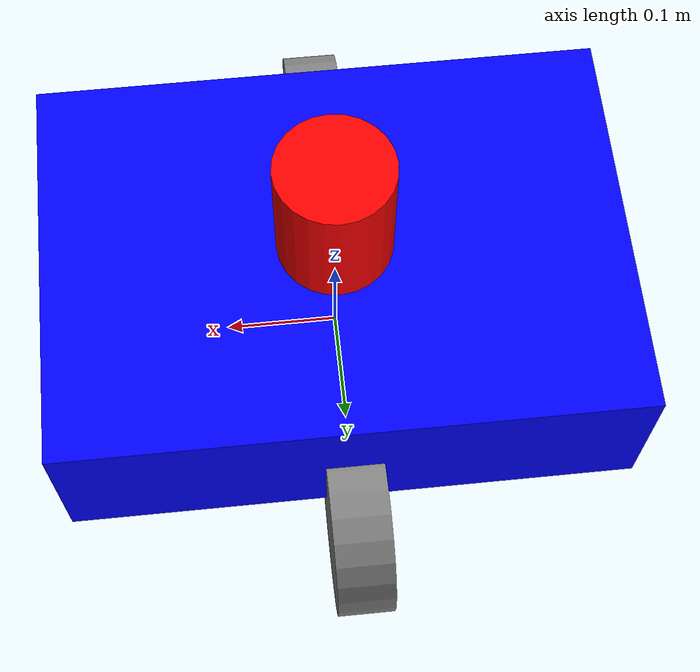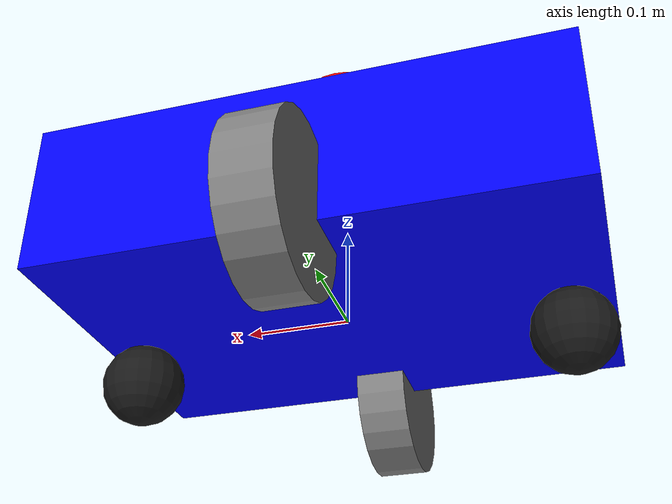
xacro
<?xml version="1.0"?>
<robot name="demo2_robot" xmlns:xacro="http://www.ros.org/wiki/xacro">

  <xacro:property name="base_link_length" value="0.5" />
  <xacro:property name="base_link_width" value="0.35" />
  <xacro:property name="base_link_height" value="0.15" />
  <xacro:property name="base_link_radius" value="0.175" />

  <xacro:property name="wheel_radius" value="0.08" />
  <xacro:property name="wheel_width" value="0.05" />

  <xacro:property name="caster_radius" value="0.04" />

  <xacro:property name="laser_height" value="0.12" />
  <xacro:property name="laser_radius" value="0.05" />

  <link name="base_footprint">
    <visual>
      <geometry>
        <sphere radius="0.001" />
      </geometry>
    </visual>
  </link>

  <joint name="base_footprint2base_link" type="fixed">
    <parent link="base_footprint" />
    <child link="base_link" />
    <origin xyz="0 0 ${base_link_height/2}" />
  </joint>

  <link name="base_link">
    <visual>
      <geometry>
        <box size="${base_link_length} ${base_link_width} ${base_link_height}" />
      </geometry>
      <material name="blue">
        <color rgba="0 0 1.0 1.0" />
      </material>
    </visual>
    <collision>
      <geometry>
        <box size="${base_link_length} ${base_link_width} ${base_link_height}" />
      </geometry>
    </collision>
    <inertial>
      <origin xyz="0 0 0" />
      <mass value="5" />
      <inertia ixx="0.05" ixy="0" ixz="0" iyy="0.08" iyz="0" izz="0.08" />
    </inertial>
  </link>

  <xacro:macro name="wheel" params="prefix joint_name parent_link xyz rpy">
    <link name="${prefix}_wheel">
      <visual>
        <geometry>
          <cylinder radius="${wheel_radius}" length="${wheel_width}" />
        </geometry>
        <material name="gray">
          <color rgba="0.5 0.5 0.5 1.0" />
        </material>
        <origin rpy="0 1.5708 0" />
      </visual>
      <collision>
        <geometry>
          <cylinder radius="${wheel_radius}" length="${wheel_width}" />
        </geometry>
        <origin rpy="0 1.5708 0" />
      </collision>
      <inertial>
        <origin xyz="0 0 0" />
        <mass value="1" />
        <inertia ixx="0.001" ixy="0" ixz="0" iyy="0.001" iyz="0" izz="0.001" />
      </inertial>
    </link>

    <joint name="${joint_name}" type="continuous">
      <parent link="${parent_link}" />
      <child link="${prefix}_wheel" />
      <origin xyz="${xyz}" rpy="${rpy}" />
      <axis xyz="0 1 0" />
    </joint>
  </xacro:macro>

  <xacro:wheel prefix="left" joint_name="left_wheel2base_link" parent_link="base_link"
              xyz="0 ${base_link_radius + wheel_width/2} -${base_link_height/2}" rpy="0 0 0" />
  <xacro:wheel prefix="right" joint_name="right_wheel2base_link" parent_link="base_link"
              xyz="0 -${base_link_radius + wheel_width/2} -${base_link_height/2}" rpy="0 0 0" />

  <xacro:macro name="caster" params="prefix joint_name parent_link xyz">
    <link name="${prefix}_caster">
      <visual>
        <geometry>
          <sphere radius="${caster_radius}" />
        </geometry>
        <material name="black">
          <color rgba="0.1 0.1 0.1 1.0" />
        </material>
      </visual>
      <collision>
        <geometry>
          <sphere radius="${caster_radius}" />
        </geometry>
      </collision>
      <inertial>
        <origin xyz="0 0 0" />
        <mass value="0.5" />
        <inertia ixx="0.0001" ixy="0" ixz="0" iyy="0.0001" iyz="0" izz="0.0001" />
      </inertial>
    </link>

    <joint name="${joint_name}" type="fixed">
      <parent link="${parent_link}" />
      <child link="${prefix}_caster" />
      <origin xyz="${xyz}" />
    </joint>
  </xacro:macro>

  <xacro:caster prefix="front" joint_name="front_caster2base_link" parent_link="base_link"
                xyz="${base_link_length/2 - caster_radius} 0 -${base_link_height/2 + caster_radius}" />
  <xacro:caster prefix="back" joint_name="back_caster2base_link" parent_link="base_link"
                xyz="-${base_link_length/2 - caster_radius} 0 -${base_link_height/2 + caster_radius}" />

  <link name="laser">
    <visual>
      <geometry>
        <cylinder radius="${laser_radius}" length="${laser_height}" />
      </geometry>
      <material name="red">
        <color rgba="1.0 0 0 1.0" />
      </material>
    </visual>
    <collision>
      <geometry>
        <cylinder radius="${laser_radius}" length="${laser_height}" />
      </geometry>
    </collision>
    <inertial>
      <origin xyz="0 0 0" />
      <mass value="0.5" />
      <inertia ixx="0.0001" ixy="0" ixz="0" iyy="0.0001" iyz="0" izz="0.0001" />
    </inertial>
  </link>

  <joint name="laser2base_link" type="fixed">
    <parent link="base_link" />
    <child link="laser" />
    <origin xyz="0 0 ${base_link_height/2 + laser_height/2}" />
  </joint>

  <gazebo>
    <plugin name="differential_drive_controller" filename="libgazebo_ros_diff_drive.so">
      <rosDebugLevel>Debug</rosDebugLevel>
      <publishWheelTF>true</publishWheelTF>
      <robotNamespace>/</robotNamespace>
      <publishTf>1</publishTf>
      <publishWheelJointState>true</publishWheelJointState>
      <alwaysOn>true</alwaysOn>
      <updateRate>100.0</updateRate>
      <legacyMode>true</legacyMode>
      <leftJoint>left_wheel2base_link</leftJoint>
      <rightJoint>right_wheel2base_link</rightJoint>
      <wheelSeparation>${base_link_radius * 2}</wheelSeparation>
      <wheelDiameter>${wheel_radius * 2}</wheelDiameter>
      <broadcastTF>1</broadcastTF>
      <wheelTorque>30</wheelTorque>
      <wheelAcceleration>1.8</wheelAcceleration>
      <commandTopic>cmd_vel</commandTopic>
      <odometryFrame>odom</odometryFrame>
      <odometryTopic>odom</odometryTopic>
      <robotBaseFrame>base_footprint</robotBaseFrame>
    </plugin>
  </gazebo>

  <gazebo reference="laser">
    <sensor type="ray" name="rplidar">
      <pose>0 0 0 0 0 0</pose>
      <visualize>true</visualize>
      <update_rate>5.5</update_rate>
      <ray>
        <scan>
          <horizontal>
            <samples>360</samples>
            <resolution>1</resolution>
            <min_angle>-3</min_angle>
            <max_angle>3</max_angle>
          </horizontal>
        </scan>
        <range>
          <min>0.10</min>
          <max>30.0</max>
          <resolution>0.01</resolution>
        </range>
        <noise>
          <type>gaussian</type>
          <mean>0.0</mean>
          <stddev>0.01</stddev>
        </noise>
      </ray>
      <plugin name="gazebo_rplidar" filename="libgazebo_ros_laser.so">
        <topicName>/scan</topicName>
        <frameName>laser</frameName>
      </plugin>
    </sensor>
  </gazebo>

</robot>
